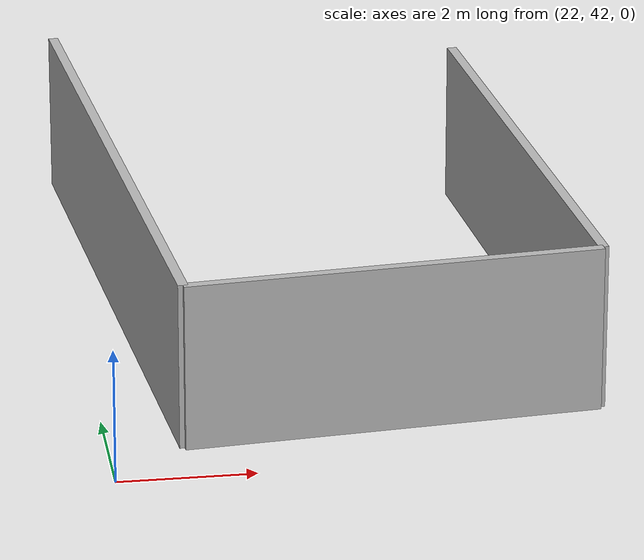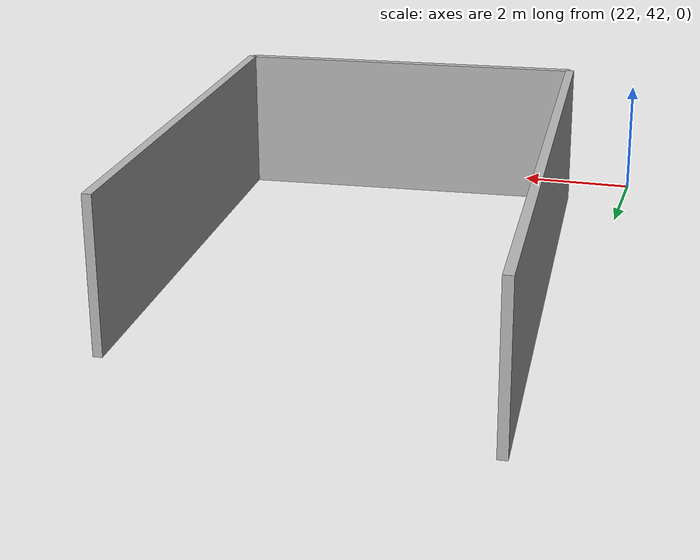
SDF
<?xml version="1.0" ?>
<sdf version="1.6">
  <model name="sps_0838">
    <pose frame="">0 0 0 0 -0 0</pose>
    <static>1</static>
    <self_collide>0</self_collide>
    <allow_auto_disable>0</allow_auto_disable>
    <link name="Wall888">
      <kinematic>0</kinematic>
      <gravity>1</gravity>
      <self_collide>0</self_collide>
      <collision name="collision">
        <geometry>
          <box>
            <size>8.45931 0.15 2.5</size>
          </box>
        </geometry>
        <pose frame="">0 0 0 0 -0 0</pose>
      </collision>
      <visual name="visual">
        <geometry>
          <box>
            <size>8.45931 0.15 2.5</size>
          </box>
        </geometry>
        <pose frame="">0 0 0 0 -0 0</pose>
        <cast_shadows>1</cast_shadows>
        <transparency>0.0</transparency>
      </visual>
      <pose frame="">28.8187 47.6926 1.25 0 0 -1.48839</pose>
    </link>
    <link name="Wall889">
      <kinematic>0</kinematic>
      <gravity>1</gravity>
      <self_collide>0</self_collide>
      <collision name="collision">
        <geometry>
          <box>
            <size>6.1005 0.15 2.5</size>
          </box>
        </geometry>
        <pose frame="">0 0 0 0 -0 0</pose>
      </collision>
      <visual name="visual">
        <geometry>
          <box>
            <size>6.1005 0.15 2.5</size>
          </box>
        </geometry>
        <pose frame="">0 0 0 0 -0 0</pose>
        <cast_shadows>1</cast_shadows>
        <transparency>0.0</transparency>
      </visual>
      <pose frame="">26.1269 43.2261 1.25 0 0 -3.05914</pose>
    </link>
    <link name="Wall890">
      <kinematic>0</kinematic>
      <gravity>1</gravity>
      <self_collide>0</self_collide>
      <collision name="collision">
        <geometry>
          <box>
            <size>10.3235 0.15 2.5</size>
          </box>
        </geometry>
        <pose frame="">0 0 0 0 -0 0</pose>
      </collision>
      <visual name="visual">
        <geometry>
          <box>
            <size>10.3235 0.15 2.5</size>
          </box>
        </geometry>
        <pose frame="">0 0 0 0 -0 0</pose>
        <cast_shadows>1</cast_shadows>
        <transparency>0.0</transparency>
      </visual>
      <pose frame="">22.6623 48.1191 1.25 0 -0 1.65319</pose>
    </link>
  </model>
</sdf>
